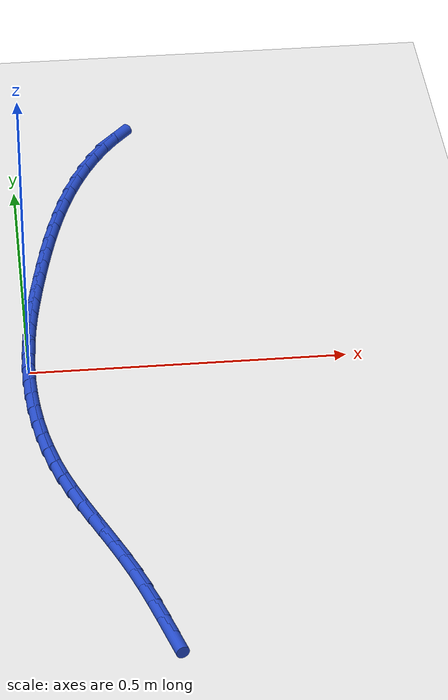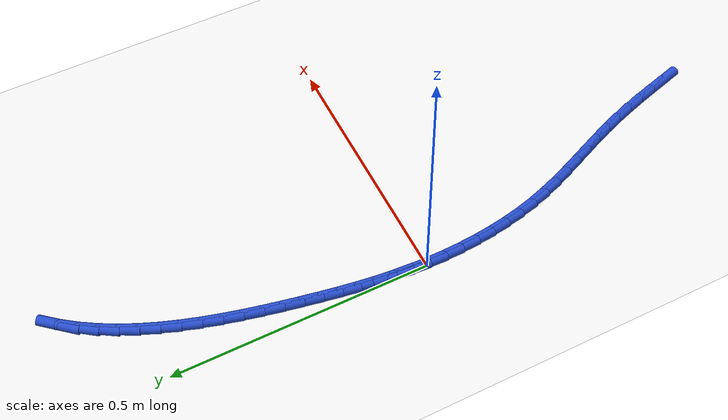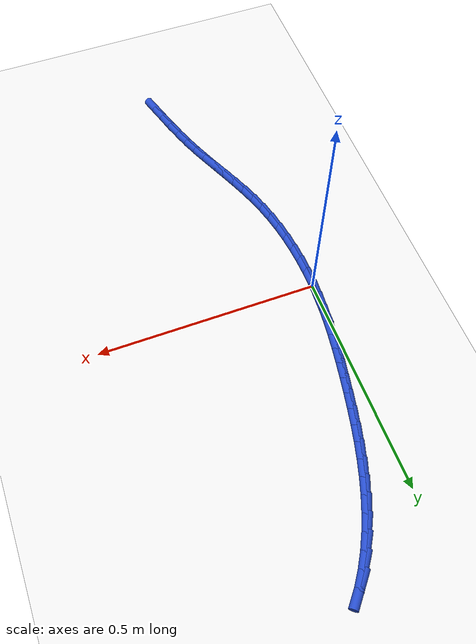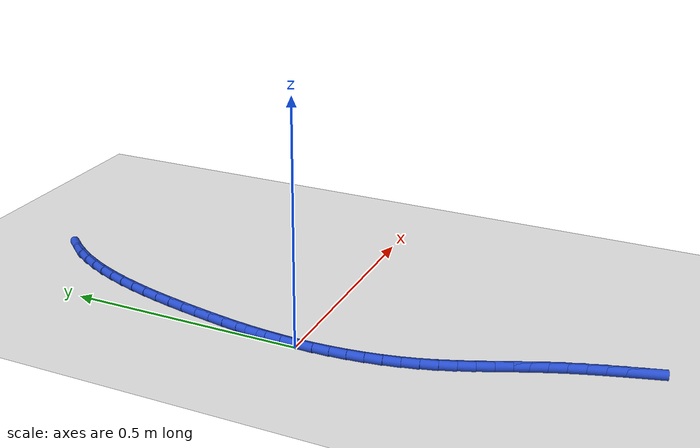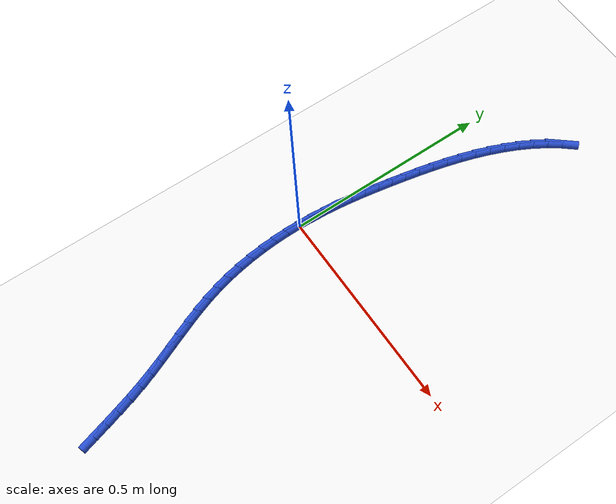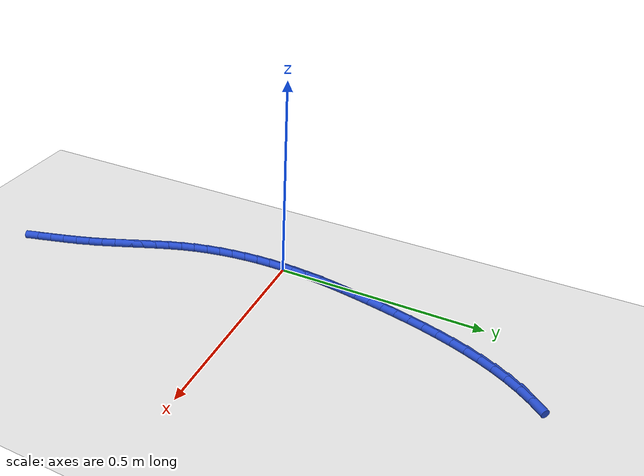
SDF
<sdf version="1.6">
 <world name="default">
  <model name="ground_plane">
   <static>1</static>
   <link name="link">
    <collision name="collision">
     <geometry><plane><normal>0 0 1</normal><size>100 100</size></plane></geometry>
     <surface><friction><ode><mu>100</mu><mu2>50</mu2></ode></friction></surface>
    </collision>
    <visual name="visual">
     <cast_shadows>0</cast_shadows>
     <geometry><plane><normal>0 0 1</normal><size>100 100</size></plane></geometry>
     <material>
      <script><uri>file://media/materials/scripts/gazebo.material</uri><name>Gazebo/WhiteGlow</name></script>
     </material>
    </visual>
   </link>
  </model>
  <model name="line">
   <link name="link_0">
    <pose>-4.336808689942018e-18 6.245004513516506e-17 0.01 0 1.57 1.5319434057864332</pose>
    <collision name="collision">
     <geometry><cylinder><radius>0.01</radius><length>0.08</length></cylinder></geometry>
    </collision>
    <visual name="visual">
     <material>
      <script><name>Gazebo/Blue</name><uri>file://media/materials/scripts/gazebo.material</uri></script>
     </material>
     <geometry><cylinder><radius>0.01</radius><length>0.08</length></cylinder></geometry>
    </visual>
   </link>
   <link name="link_1">
    <pose>0.0013140539392554856 0.03380421931746958 0.01 0 1.57 1.4986485388361865</pose>
    <collision name="collision">
     <geometry><cylinder><radius>0.01</radius><length>0.08</length></cylinder></geometry>
    </collision>
    <visual name="visual">
     <material>
      <script><name>Gazebo/Blue</name><uri>file://media/materials/scripts/gazebo.material</uri></script>
     </material>
     <geometry><cylinder><radius>0.01</radius><length>0.08</length></cylinder></geometry>
    </visual>
   </link>
   <link name="link_2">
    <pose>0.0037434772871277416 0.06741864683966615 0.01 0 1.57 1.468514302211777</pose>
    <collision name="collision">
     <geometry><cylinder><radius>0.01</radius><length>0.08</length></cylinder></geometry>
    </collision>
    <visual name="visual">
     <material>
      <script><name>Gazebo/Blue</name><uri>file://media/materials/scripts/gazebo.material</uri></script>
     </material>
     <geometry><cylinder><radius>0.01</radius><length>0.08</length></cylinder></geometry>
    </visual>
   </link>
   <link name="link_3">
    <pose>0.007185687889429495 0.10095531708893624 0.01 0 1.57 1.441867210033133</pose>
    <collision name="collision">
     <geometry><cylinder><radius>0.01</radius><length>0.08</length></cylinder></geometry>
    </collision>
    <visual name="visual">
     <material>
      <script><name>Gazebo/Blue</name><uri>file://media/materials/scripts/gazebo.material</uri></script>
     </material>
     <geometry><cylinder><radius>0.01</radius><length>0.08</length></cylinder></geometry>
    </visual>
   </link>
   <link name="link_4">
    <pose>0.01153810359197348 0.13452626458762634 0.01 0 1.57 1.418936077674716</pose>
    <collision name="collision">
     <geometry><cylinder><radius>0.01</radius><length>0.08</length></cylinder></geometry>
    </collision>
    <visual name="visual">
     <material>
      <script><name>Gazebo/Blue</name><uri>file://media/materials/scripts/gazebo.material</uri></script>
     </material>
     <geometry><cylinder><radius>0.01</radius><length>0.08</length></cylinder></geometry>
    </visual>
   </link>
   <link name="link_5">
    <pose>0.016698142240572422 0.1682435238580828 0.01 0 1.57 1.399854854484243</pose>
    <collision name="collision">
     <geometry><cylinder><radius>0.01</radius><length>0.08</length></cylinder></geometry>
    </collision>
    <visual name="visual">
     <material>
      <script><name>Gazebo/Blue</name><uri>file://media/materials/scripts/gazebo.material</uri></script>
     </material>
     <geometry><cylinder><radius>0.01</radius><length>0.08</length></cylinder></geometry>
    </visual>
   </link>
   <link name="link_6">
    <pose>0.022563221681039053 0.20221912942265216 0.01 0 1.57 1.3846703487722567</pose>
    <collision name="collision">
     <geometry><cylinder><radius>0.01</radius><length>0.08</length></cylinder></geometry>
    </collision>
    <visual name="visual">
     <material>
      <script><name>Gazebo/Blue</name><uri>file://media/materials/scripts/gazebo.material</uri></script>
     </material>
     <geometry><cylinder><radius>0.01</radius><length>0.08</length></cylinder></geometry>
    </visual>
   </link>
   <link name="link_7">
    <pose>0.029030759759186106 0.23656511580368084 0.01 0 1.57 1.372970793227422</pose>
    <collision name="collision">
     <geometry><cylinder><radius>0.01</radius><length>0.08</length></cylinder></geometry>
    </collision>
    <visual name="visual">
     <material>
      <script><name>Gazebo/Blue</name><uri>file://media/materials/scripts/gazebo.material</uri></script>
     </material>
     <geometry><cylinder><radius>0.01</radius><length>0.08</length></cylinder></geometry>
    </visual>
   </link>
   <link name="link_8">
    <pose>0.036009167121939877 0.2713793061466617 0.01 0 1.57 1.3599854319511753</pose>
    <collision name="collision">
     <geometry><cylinder><radius>0.01</radius><length>0.08</length></cylinder></geometry>
    </collision>
    <visual name="visual">
     <material>
      <script><name>Gazebo/Blue</name><uri>file://media/materials/scripts/gazebo.material</uri></script>
     </material>
     <geometry><cylinder><radius>0.01</radius><length>0.08</length></cylinder></geometry>
    </visual>
   </link>
   <link name="link_9">
    <pose>0.04354262982971746 0.3065839945805415 0.01 0 1.57 1.3425170211216795</pose>
    <collision name="collision">
     <geometry><cylinder><radius>0.01</radius><length>0.08</length></cylinder></geometry>
    </collision>
    <visual name="visual">
     <material>
      <script><name>Gazebo/Blue</name><uri>file://media/materials/scripts/gazebo.material</uri></script>
     </material>
     <geometry><cylinder><radius>0.01</radius><length>0.08</length></cylinder></geometry>
    </visual>
   </link>
   <link name="link_10">
    <pose>0.051766877501824564 0.3419831286908846 0.01 0 1.57 1.3204099664230295</pose>
    <collision name="collision">
     <geometry><cylinder><radius>0.01</radius><length>0.08</length></cylinder></geometry>
    </collision>
    <visual name="visual">
     <material>
      <script><name>Gazebo/Blue</name><uri>file://media/materials/scripts/gazebo.material</uri></script>
     </material>
     <geometry><cylinder><radius>0.01</radius><length>0.08</length></cylinder></geometry>
    </visual>
   </link>
   <link name="link_11">
    <pose>0.06081935300771795 0.37737844119160574 0.01 0 1.57 1.2934705210745905</pose>
    <collision name="collision">
     <geometry><cylinder><radius>0.01</radius><length>0.08</length></cylinder></geometry>
    </collision>
    <visual name="visual">
     <material>
      <script><name>Gazebo/Blue</name><uri>file://media/materials/scripts/gazebo.material</uri></script>
     </material>
     <geometry><cylinder><radius>0.01</radius><length>0.08</length></cylinder></geometry>
    </visual>
   </link>
   <link name="link_12">
    <pose>0.07083749921685435 0.4125716647966196 0.01 0 1.57 1.261418212774206</pose>
    <collision name="collision">
     <geometry><cylinder><radius>0.01</radius><length>0.08</length></cylinder></geometry>
    </collision>
    <visual name="visual">
     <material>
      <script><name>Gazebo/Blue</name><uri>file://media/materials/scripts/gazebo.material</uri></script>
     </material>
     <geometry><cylinder><radius>0.01</radius><length>0.08</length></cylinder></geometry>
    </visual>
   </link>
   <link name="link_13">
    <pose>0.08195875899869054 0.44736453221984085 0.01 0 1.57 1.2238980358185412</pose>
    <collision name="collision">
     <geometry><cylinder><radius>0.01</radius><length>0.08</length></cylinder></geometry>
    </collision>
    <visual name="visual">
     <material>
      <script><name>Gazebo/Blue</name><uri>file://media/materials/scripts/gazebo.material</uri></script>
     </material>
     <geometry><cylinder><radius>0.01</radius><length>0.08</length></cylinder></geometry>
    </visual>
   </link>
   <link name="link_14">
    <pose>0.09432057522268321 0.481558776175184 0.01 0 1.57 1.1804974588891914</pose>
    <collision name="collision">
     <geometry><cylinder><radius>0.01</radius><length>0.08</length></cylinder></geometry>
    </collision>
    <visual name="visual">
     <material>
      <script><name>Gazebo/Blue</name><uri>file://media/materials/scripts/gazebo.material</uri></script>
     </material>
     <geometry><cylinder><radius>0.01</radius><length>0.08</length></cylinder></geometry>
    </visual>
   </link>
   <link name="link_15">
    <pose>0.10806039075828913 0.5149561293765638 0.01 0 1.57 1.1307727012912336</pose>
    <collision name="collision">
     <geometry><cylinder><radius>0.01</radius><length>0.08</length></cylinder></geometry>
    </collision>
    <visual name="visual">
     <material>
      <script><name>Gazebo/Blue</name><uri>file://media/materials/scripts/gazebo.material</uri></script>
     </material>
     <geometry><cylinder><radius>0.01</radius><length>0.08</length></cylinder></geometry>
    </visual>
   </link>
   <link name="link_16">
    <pose>0.12331564847496501 0.5473583245378948 0.01 0 1.57 1.0742895341842118</pose>
    <collision name="collision">
     <geometry><cylinder><radius>0.01</radius><length>0.08</length></cylinder></geometry>
    </collision>
    <visual name="visual">
     <material>
      <script><name>Gazebo/Blue</name><uri>file://media/materials/scripts/gazebo.material</uri></script>
     </material>
     <geometry><cylinder><radius>0.01</radius><length>0.08</length></cylinder></geometry>
    </visual>
   </link>
   <link name="link_17">
    <pose>0.14022379124216766 0.5785670943730917 0.01 0 1.57 1.0106839537281425</pose>
    <collision name="collision">
     <geometry><cylinder><radius>0.01</radius><length>0.08</length></cylinder></geometry>
    </collision>
    <visual name="visual">
     <material>
      <script><name>Gazebo/Blue</name><uri>file://media/materials/scripts/gazebo.material</uri></script>
     </material>
     <geometry><cylinder><radius>0.01</radius><length>0.08</length></cylinder></geometry>
    </visual>
   </link>
   <link name="link_18">
    <pose>0.15892226192935377 0.6083841715960694 0.01 0 1.57 0.9397462079947269</pose>
    <collision name="collision">
     <geometry><cylinder><radius>0.01</radius><length>0.08</length></cylinder></geometry>
    </collision>
    <visual name="visual">
     <material>
      <script><name>Gazebo/Blue</name><uri>file://media/materials/scripts/gazebo.material</uri></script>
     </material>
     <geometry><cylinder><radius>0.01</radius><length>0.08</length></cylinder></geometry>
    </visual>
   </link>
   <link name="link_19">
    <pose>0.17954850340598005 0.6366112889207419 0.01 0 1.57 0.8615261207308403</pose>
    <collision name="collision">
     <geometry><cylinder><radius>0.01</radius><length>0.08</length></cylinder></geometry>
    </collision>
    <visual name="visual">
     <material>
      <script><name>Gazebo/Blue</name><uri>file://media/materials/scripts/gazebo.material</uri></script>
     </material>
     <geometry><cylinder><radius>0.01</radius><length>0.08</length></cylinder></geometry>
    </visual>
   </link>
   <link name="link_231">
    <pose>0.16889963615045983 -0.6262615300190377 0.01 0 1.57 -1.2923330930129056</pose>
    <collision name="collision">
     <geometry><cylinder><radius>0.01</radius><length>0.08</length></cylinder></geometry>
    </collision>
    <visual name="visual">
     <material>
      <script><name>Gazebo/Blue</name><uri>file://media/materials/scripts/gazebo.material</uri></script>
     </material>
     <geometry><cylinder><radius>0.01</radius><length>0.08</length></cylinder></geometry>
    </visual>
   </link>
   <link name="link_232">
    <pose>0.15915755718655591 -0.5921853562128006 0.01 0 1.57 -1.283045486559114</pose>
    <collision name="collision">
     <geometry><cylinder><radius>0.01</radius><length>0.08</length></cylinder></geometry>
    </collision>
    <visual name="visual">
     <material>
      <script><name>Gazebo/Blue</name><uri>file://media/materials/scripts/gazebo.material</uri></script>
     </material>
     <geometry><cylinder><radius>0.01</radius><length>0.08</length></cylinder></geometry>
    </visual>
   </link>
   <link name="link_233">
    <pose>0.14911924050021402 -0.558268111099544 0.01 0 1.57 -1.2663028367039362</pose>
    <collision name="collision">
     <geometry><cylinder><radius>0.01</radius><length>0.08</length></cylinder></geometry>
    </collision>
    <visual name="visual">
     <material>
      <script><name>Gazebo/Blue</name><uri>file://media/materials/scripts/gazebo.material</uri></script>
     </material>
     <geometry><cylinder><radius>0.01</radius><length>0.08</length></cylinder></geometry>
    </visual>
   </link>
   <link name="link_234">
    <pose>0.13856216395303664 -0.5246753702945176 0.01 0 1.57 -1.2418816153330197</pose>
    <collision name="collision">
     <geometry><cylinder><radius>0.01</radius><length>0.08</length></cylinder></geometry>
    </collision>
    <visual name="visual">
     <material>
      <script><name>Gazebo/Blue</name><uri>file://media/materials/scripts/gazebo.material</uri></script>
     </material>
     <geometry><cylinder><radius>0.01</radius><length>0.08</length></cylinder></geometry>
    </visual>
   </link>
   <link name="link_235">
    <pose>0.127263805406626 -0.4915727094129702 0.01 0 1.57 -1.2105829012960925</pose>
    <collision name="collision">
     <geometry><cylinder><radius>0.01</radius><length>0.08</length></cylinder></geometry>
    </collision>
    <visual name="visual">
     <material>
      <script><name>Gazebo/Blue</name><uri>file://media/materials/scripts/gazebo.material</uri></script>
     </material>
     <geometry><cylinder><radius>0.01</radius><length>0.08</length></cylinder></geometry>
    </visual>
   </link>
   <link name="link_236">
    <pose>0.11503512160525776 -0.4591054418922875 0.01 0 1.57 -1.1837196892834154</pose>
    <collision name="collision">
     <geometry><cylinder><radius>0.01</radius><length>0.08</length></cylinder></geometry>
    </collision>
    <visual name="visual">
     <material>
      <script><name>Gazebo/Blue</name><uri>file://media/materials/scripts/gazebo.material</uri></script>
     </material>
     <geometry><cylinder><radius>0.01</radius><length>0.08</length></cylinder></geometry>
    </visual>
   </link>
   <link name="link_237">
    <pose>0.10203300989365048 -0.42720951008525904 0.01 0 1.57 -1.168342521761157</pose>
    <collision name="collision">
     <geometry><cylinder><radius>0.01</radius><length>0.08</length></cylinder></geometry>
    </collision>
    <visual name="visual">
     <material>
      <script><name>Gazebo/Blue</name><uri>file://media/materials/scripts/gazebo.material</uri></script>
     </material>
     <geometry><cylinder><radius>0.01</radius><length>0.08</length></cylinder></geometry>
    </visual>
   </link>
   <link name="link_238">
    <pose>0.08861859857413762 -0.3956972511446791 0.01 0 1.57 -1.1647990068709932</pose>
    <collision name="collision">
     <geometry><cylinder><radius>0.01</radius><length>0.08</length></cylinder></geometry>
    </collision>
    <visual name="visual">
     <material>
      <script><name>Gazebo/Blue</name><uri>file://media/materials/scripts/gazebo.material</uri></script>
     </material>
     <geometry><cylinder><radius>0.01</radius><length>0.08</length></cylinder></geometry>
    </visual>
   </link>
   <link name="link_239">
    <pose>0.07515566121071353 -0.36437940125108853 0.01 0 1.57 -1.1732673210928652</pose>
    <collision name="collision">
     <geometry><cylinder><radius>0.01</radius><length>0.08</length></cylinder></geometry>
    </collision>
    <visual name="visual">
     <material>
      <script><name>Gazebo/Blue</name><uri>file://media/materials/scripts/gazebo.material</uri></script>
     </material>
     <geometry><cylinder><radius>0.01</radius><length>0.08</length></cylinder></geometry>
    </visual>
   </link>
   <link name="link_240">
    <pose>0.062007971367372815 -0.33306669658502824 0.01 0 1.57 -1.1938547714258767</pose>
    <collision name="collision">
     <geometry><cylinder><radius>0.01</radius><length>0.08</length></cylinder></geometry>
    </collision>
    <visual name="visual">
     <material>
      <script><name>Gazebo/Blue</name><uri>file://media/materials/scripts/gazebo.material</uri></script>
     </material>
     <geometry><cylinder><radius>0.01</radius><length>0.08</length></cylinder></geometry>
    </visual>
   </link>
   <link name="link_241">
    <pose>0.04953930260810907 -0.301569873327037 0.01 0 1.57 -1.2265580131706337</pose>
    <collision name="collision">
     <geometry><cylinder><radius>0.01</radius><length>0.08</length></cylinder></geometry>
    </collision>
    <visual name="visual">
     <material>
      <script><name>Gazebo/Blue</name><uri>file://media/materials/scripts/gazebo.material</uri></script>
     </material>
     <geometry><cylinder><radius>0.01</radius><length>0.08</length></cylinder></geometry>
    </visual>
   </link>
   <link name="link_242">
    <pose>0.038113428496916936 -0.26969966765765613 0.01 0 1.57 -1.2710672726890933</pose>
    <collision name="collision">
     <geometry><cylinder><radius>0.01</radius><length>0.08</length></cylinder></geometry>
    </collision>
    <visual name="visual">
     <material>
      <script><name>Gazebo/Blue</name><uri>file://media/materials/scripts/gazebo.material</uri></script>
     </material>
     <geometry><cylinder><radius>0.01</radius><length>0.08</length></cylinder></geometry>
    </visual>
   </link>
   <link name="link_243">
    <pose>0.028091113204532295 -0.23726912570967706 0.01 0 1.57 -1.3214037291830425</pose>
    <collision name="collision">
     <geometry><cylinder><radius>0.01</radius><length>0.08</length></cylinder></geometry>
    </collision>
    <visual name="visual">
     <material>
      <script><name>Gazebo/Blue</name><uri>file://media/materials/scripts/gazebo.material</uri></script>
     </material>
     <geometry><cylinder><radius>0.01</radius><length>0.08</length></cylinder></geometry>
    </visual>
   </link>
   <link name="link_244">
    <pose>0.01967232093397407 -0.2042147205712696 0.01 0 1.57 -1.3693339152424577</pose>
    <collision name="collision">
     <geometry><cylinder><radius>0.01</radius><length>0.08</length></cylinder></geometry>
    </collision>
    <visual name="visual">
     <material>
      <script><name>Gazebo/Blue</name><uri>file://media/materials/scripts/gazebo.material</uri></script>
     </material>
     <geometry><cylinder><radius>0.01</radius><length>0.08</length></cylinder></geometry>
    </visual>
   </link>
   <link name="link_245">
    <pose>0.012818520877021441 -0.1706559895036135 0.01 0 1.57 -1.4144968385651866</pose>
    <collision name="collision">
     <geometry><cylinder><radius>0.01</radius><length>0.08</length></cylinder></geometry>
    </collision>
    <visual name="visual">
     <material>
      <script><name>Gazebo/Blue</name><uri>file://media/materials/scripts/gazebo.material</uri></script>
     </material>
     <geometry><cylinder><radius>0.01</radius><length>0.08</length></cylinder></geometry>
    </visual>
   </link>
   <link name="link_246">
    <pose>0.007471872925207501 -0.13672729121452004 0.01 0 1.57 -1.4572110896417723</pose>
    <collision name="collision">
     <geometry><cylinder><radius>0.01</radius><length>0.08</length></cylinder></geometry>
    </collision>
    <visual name="visual">
     <material>
      <script><name>Gazebo/Blue</name><uri>file://media/materials/scripts/gazebo.material</uri></script>
     </material>
     <geometry><cylinder><radius>0.01</radius><length>0.08</length></cylinder></geometry>
    </visual>
   </link>
   <link name="link_247">
    <pose>0.0035745369700653203 -0.10256298441180071 0.01 0 1.57 -1.4977955822688833</pose>
    <collision name="collision">
     <geometry><cylinder><radius>0.01</radius><length>0.08</length></cylinder></geometry>
    </collision>
    <visual name="visual">
     <material>
      <script><name>Gazebo/Blue</name><uri>file://media/materials/scripts/gazebo.material</uri></script>
     </material>
     <geometry><cylinder><radius>0.01</radius><length>0.08</length></cylinder></geometry>
    </visual>
   </link>
   <link name="link_248">
    <pose>0.0010686729031279605 -0.06829742780326672 0.01 0 1.57 -1.5365663929273345</pose>
    <collision name="collision">
     <geometry><cylinder><radius>0.01</radius><length>0.08</length></cylinder></geometry>
    </collision>
    <visual name="visual">
     <material>
      <script><name>Gazebo/Blue</name><uri>file://media/materials/scripts/gazebo.material</uri></script>
     </material>
     <geometry><cylinder><radius>0.01</radius><length>0.08</length></cylinder></geometry>
    </visual>
   </link>
   <link name="link_249">
    <pose>-0.00010355938407150293 -0.03406498009672942 0.01 0 1.57 1.5677562820113766</pose>
    <collision name="collision">
     <geometry><cylinder><radius>0.01</radius><length>0.08</length></cylinder></geometry>
    </collision>
    <visual name="visual">
     <material>
      <script><name>Gazebo/Blue</name><uri>file://media/materials/scripts/gazebo.material</uri></script>
     </material>
     <geometry><cylinder><radius>0.01</radius><length>0.08</length></cylinder></geometry>
    </visual>
   </link>
   <link name="link_250">
    <pose>2.6020852139652106e-18 -1.8041124150158794e-16 0.01 0 1.57 1.5316756709281045</pose>
    <collision name="collision">
     <geometry><cylinder><radius>0.01</radius><length>0.08</length></cylinder></geometry>
    </collision>
    <visual name="visual">
     <material>
      <script><name>Gazebo/Blue</name><uri>file://media/materials/scripts/gazebo.material</uri></script>
     </material>
     <geometry><cylinder><radius>0.01</radius><length>0.08</length></cylinder></geometry>
    </visual>
   </link>
   <link name="link_251">
    <pose>0.0013215109468755438 0.033763153779109725 0.01 0 1.57 1.4964706062976854</pose>
    <collision name="collision">
     <geometry><cylinder><radius>0.01</radius><length>0.08</length></cylinder></geometry>
    </collision>
    <visual name="visual">
     <material>
      <script><name>Gazebo/Blue</name><uri>file://media/materials/scripts/gazebo.material</uri></script>
     </material>
     <geometry><cylinder><radius>0.01</radius><length>0.08</length></cylinder></geometry>
    </visual>
   </link>
   <link name="link_252">
    <pose>0.0038031333480881904 0.0670901225327889 0.01 0 1.57 1.514169995417775</pose>
    <collision name="collision">
     <geometry><cylinder><radius>0.01</radius><length>0.08</length></cylinder></geometry>
    </collision>
    <visual name="visual">
     <material>
      <script><name>Gazebo/Blue</name><uri>file://media/materials/scripts/gazebo.material</uri></script>
     </material>
     <geometry><cylinder><radius>0.01</radius><length>0.08</length></cylinder></geometry>
    </visual>
   </link>
  </model>
 </world>
</sdf>
